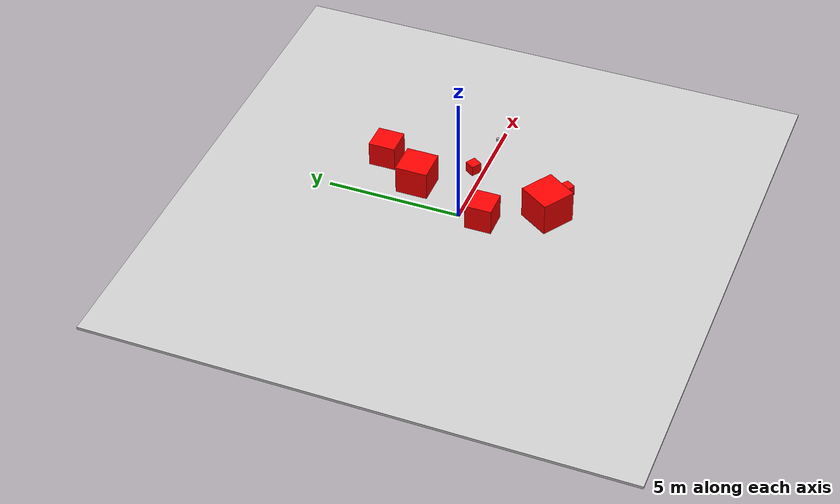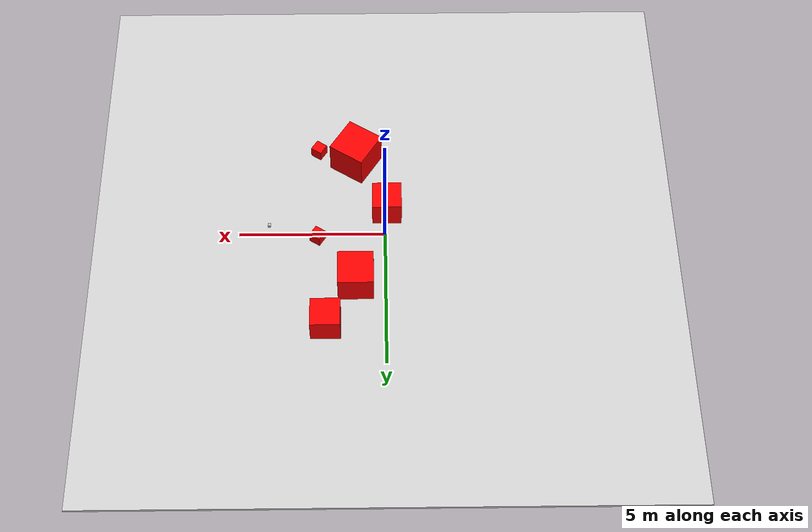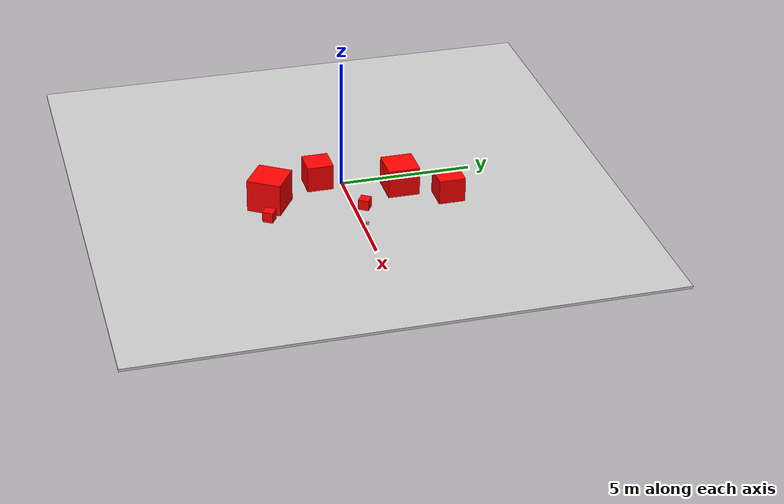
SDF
<sdf version='1.7'>
  <world name='visualize_lidar_world'>
    <physics name='1ms' type='ignored'>
      <max_step_size>0.001</max_step_size>
      <real_time_factor>1</real_time_factor>
      <real_time_update_rate>1000</real_time_update_rate>
    </physics>
    <plugin name='ignition::gazebo::systems::Physics' filename='libignition-gazebo-physics-system.so'/>
    <plugin name='ignition::gazebo::systems::Sensors' filename='libignition-gazebo-sensors-system.so'>
      <render_engine>ogre2</render_engine>
    </plugin>
    <plugin name='ignition::gazebo::systems::SceneBroadcaster' filename='libignition-gazebo-scene-broadcaster-system.so'/>
    <gui fullscreen='0'>
      <plugin name='3D View' filename='GzScene3D'>
        <ignition-gui>
          <title>3D View</title>
          <property type='bool' key='showTitleBar'>0</property>
          <property type='string' key='state'>docked</property>
        </ignition-gui>
        <engine>ogre2</engine>
        <scene>scene</scene>
        <ambient_light>0.4 0.4 0.4</ambient_light>
        <background_color>0.8 0.8 0.8</background_color>
        <camera_pose>-6 0 6 0 0.5 0</camera_pose>
      </plugin>
      <plugin name='World control' filename='WorldControl'>
        <ignition-gui>
          <title>World control</title>
          <property type='bool' key='showTitleBar'>0</property>
          <property type='bool' key='resizable'>0</property>
          <property type='double' key='height'>72</property>
          <property type='double' key='width'>121</property>
          <property type='double' key='z'>1</property>
          <property type='string' key='state'>floating</property>
          <anchors target='3D View'>
            <line own='left' target='left'/>
            <line own='bottom' target='bottom'/>
          </anchors>
        </ignition-gui>
        <play_pause>1</play_pause>
        <step>1</step>
        <start_paused>1</start_paused>
        <service>/world/visualize_lidar_world/control</service>
        <stats_topic>/world/visualize_lidar_world/stats</stats_topic>
      </plugin>
      <plugin name='World stats' filename='WorldStats'>
        <ignition-gui>
          <title>World stats</title>
          <property type='bool' key='showTitleBar'>0</property>
          <property type='bool' key='resizable'>0</property>
          <property type='double' key='height'>110</property>
          <property type='double' key='width'>290</property>
          <property type='double' key='z'>1</property>
          <property type='string' key='state'>floating</property>
          <anchors target='3D View'>
            <line own='right' target='right'/>
            <line own='bottom' target='bottom'/>
          </anchors>
        </ignition-gui>
        <sim_time>1</sim_time>
        <real_time>1</real_time>
        <real_time_factor>1</real_time_factor>
        <iterations>1</iterations>
        <topic>/world/visualize_lidar_world/stats</topic>
      </plugin>
      <plugin name='Visualize Lidar' filename='VisualizeLidar'>
        <ignition-gui>
          <property key='state' type='string'>docked</property>
        </ignition-gui>
      </plugin>
    </gui>
    <light name='sun' type='directional'>
      <cast_shadows>1</cast_shadows>
      <pose>0 0 10 0 -0 0</pose>
      <diffuse>0.8 0.8 0.8 1</diffuse>
      <specular>0.2 0.2 0.2 1</specular>
      <attenuation>
        <range>1000</range>
        <constant>0.9</constant>
        <linear>0.01</linear>
        <quadratic>0.001</quadratic>
      </attenuation>
      <direction>-0.5 0.1 -0.9</direction>
      <spot>
        <inner_angle>0</inner_angle>
        <outer_angle>0</outer_angle>
        <falloff>0</falloff>
      </spot>
    </light>
    <gravity>0 0 -9.8</gravity>
    <magnetic_field>6e-06 2.3e-05 -4.2e-05</magnetic_field>
    <atmosphere type='adiabatic'/>
    <scene>
      <ambient>0.4 0.4 0.4 1</ambient>
      <background>0.7 0.7 0.7 1</background>
      <shadows>1</shadows>
    </scene>
    <model name='ground_plane'>
      <static>1</static>
      <link name='link'>
        <collision name='collision'>
          <geometry>
            <box>
              <size>20 20 0.1</size>
            </box>
          </geometry>
          <surface>
            <friction>
              <ode/>
            </friction>
            <bounce/>
            <contact/>
          </surface>
        </collision>
        <visual name='visual'>
          <geometry>
            <box>
              <size>20 20 0.1</size>
            </box>
          </geometry>
          <material>
            <ambient>0.8 0.8 0.8 1</ambient>
            <diffuse>0.8 0.8 0.8 1</diffuse>
            <specular>0.8 0.8 0.8 1</specular>
          </material>
        </visual>
      </link>
      <pose>0 0 0 0 -0 0</pose>
    </model>
    <model name='box'>
      <pose>-0.067576 -0.928388 0.549999 1e-06 -0 0.00258</pose>
      <link name='box_link'>
        <inertial>
          <inertia>
            <ixx>1</ixx>
            <ixy>0</ixy>
            <ixz>0</ixz>
            <iyy>1</iyy>
            <iyz>0</iyz>
            <izz>1</izz>
          </inertia>
          <mass>1</mass>
        </inertial>
        <collision name='box_collision'>
          <geometry>
            <box>
              <size>1 1 1</size>
            </box>
          </geometry>
          <surface>
            <friction>
              <ode/>
            </friction>
            <bounce/>
            <contact/>
          </surface>
        </collision>
        <visual name='box_visual'>
          <geometry>
            <box>
              <size>1 1 1</size>
            </box>
          </geometry>
          <material>
            <ambient>1 0 0 1</ambient>
            <diffuse>1 0 0 1</diffuse>
            <specular>1 0 0 1</specular>
          </material>
        </visual>
      </link>
    </model>
    <model name='box_2'>
      <pose>1 -3 0.65 0 0 1</pose>
      <link name='box_link'>
        <inertial>
          <inertia>
            <ixx>1</ixx><ixy>0</ixy><ixz>0</ixz>
            <iyy>1</iyy><iyz>0</iyz><izz>1</izz>
          </inertia>
          <mass>1</mass>
        </inertial>
        <collision name='box_collision'>
          <geometry><box><size>1.3 1.3 1.3</size></box></geometry>
          <surface>
            <friction>
              <ode/>
            </friction>
            <bounce/>
            <contact/>
          </surface>
        </collision>
        <visual name='box_visual'>
          <geometry>
            <box>
              <size>1.3 1.3 1.3</size>
            </box>
          </geometry>
          <material>
            <ambient>1 0 0 1</ambient>
            <diffuse>1 0 0 1</diffuse>
            <specular>1 0 0 1</specular>
          </material>
        </visual>
      </link>
    </model>
    <model name='box_3'>
      <pose>2.3 0.3 0.4 0 0 1</pose>
      <link name='box_link'>
        <inertial>
          <inertia>
            <ixx>1</ixx><ixy>0</ixy><ixz>0</ixz>
            <iyy>1</iyy><iyz>0</iyz><izz>1</izz>
          </inertia>
          <mass>1</mass>
        </inertial>
        <collision name='box_collision'>
          <geometry><box><size>0.4 0.4 0.4</size></box></geometry>
          <surface>
            <friction>
              <ode/>
            </friction>
            <bounce/>
            <contact/>
          </surface>
        </collision>
        <visual name='box_visual'>
          <geometry>
            <box>
              <size>0.4 0.4 0.4</size>
            </box>
          </geometry>
          <material>
            <ambient>1 0 0 1</ambient>
            <diffuse>1 0 0 1</diffuse>
            <specular>1 0 0 1</specular>
          </material>
        </visual>
      </link>
    </model>
    <model name='box_6'>
      <pose>2.3 -3.3 0.4 0 0 1</pose>
      <link name='box_link'>
        <inertial>
          <inertia>
            <ixx>1</ixx><ixy>0</ixy><ixz>0</ixz>
            <iyy>1</iyy><iyz>0</iyz><izz>1</izz>
          </inertia>
          <mass>1</mass>
        </inertial>
        <collision name='box_collision'>
          <geometry><box><size>0.4 0.4 0.4</size></box></geometry>
          <surface>
            <friction>
              <ode/>
            </friction>
            <bounce/>
            <contact/>
          </surface>
        </collision>
        <visual name='box_visual'>
          <geometry>
            <box>
              <size>0.4 0.4 0.4</size>
            </box>
          </geometry>
          <material>
            <ambient>1 0 0 1</ambient>
            <diffuse>1 0 0 1</diffuse>
            <specular>1 0 0 1</specular>
          </material>
        </visual>
      </link>
    </model>
    <model name='box_4'>
      <pose>1 2 0.549999 1e-06 -0 0.00258</pose>
      <link name='box_link'>
        <inertial>
          <inertia>
            <ixx>1</ixx>
            <ixy>0</ixy>
            <ixz>0</ixz>
            <iyy>1</iyy>
            <iyz>0</iyz>
            <izz>1</izz>
          </inertia>
          <mass>1</mass>
        </inertial>
        <collision name='box_collision'>
          <geometry><box><size>1.2 1.2 1.2</size></box></geometry>
          <surface>
            <friction><ode/></friction>
            <bounce/>
            <contact/>
          </surface>
        </collision>
        <visual name='box_visual'>
          <geometry><box><size>1.2 1.2 1.2</size></box></geometry>
          <material>
            <ambient>1 0 0 1</ambient>
            <diffuse>1 0 0 1</diffuse>
            <specular>1 0 0 1</specular>
          </material>
        </visual>
      </link>
    </model>
    <model name='box_5'>
      <pose>2 3.6 0.5 0 0 0</pose>
      <link name='box_link'>
        <inertial>
          <inertia>
            <ixx>1</ixx>
            <ixy>0</ixy>
            <ixz>0</ixz>
            <iyy>1</iyy>
            <iyz>0</iyz>
            <izz>1</izz>
          </inertia>
          <mass>1</mass>
        </inertial>
        <collision name='box_collision'>
          <geometry><box><size>1 1 1</size></box></geometry>
          <surface>
            <friction><ode/></friction>
            <bounce/>
            <contact/>
          </surface>
        </collision>
        <visual name='box_visual'>
          <geometry><box><size>1 1 1</size></box></geometry>
          <material>
            <ambient>1 0 0 1</ambient>
            <diffuse>1 0 0 1</diffuse>
            <specular>1 0 0 1</specular>
          </material>
        </visual>
      </link>
    </model>
    <model name='model_with_lidar'>
      <pose>4 0 0.5 0 -0 3.14</pose>
      <link name='link'>
        <pose>0.05 0.05 0.05 0 -0 0</pose>
        <inertial>
          <mass>0.1</mass>
          <inertia>
            <ixx>0.000166667</ixx>
            <iyy>0.000166667</iyy>
            <izz>0.000166667</izz>
            <ixy>0</ixy>
            <ixz>0</ixz>
            <iyz>0</iyz>
          </inertia>
        </inertial>
        <collision name='collision'>
          <geometry>
            <box>
              <size>0.1 0.1 0.1</size>
            </box>
          </geometry>
          <surface>
            <friction>
              <ode/>
            </friction>
            <bounce/>
            <contact/>
          </surface>
        </collision>
        <visual name='visual'>
          <geometry>
            <box>
              <size>0.1 0.1 0.1</size>
            </box>
          </geometry>
        </visual>
        <sensor name='gpu_lidar' type='gpu_lidar'>
          <topic>lidar</topic>
          <update_rate>10</update_rate>
          <lidar>
            <scan>
              <horizontal>
                <samples>640</samples>
                <resolution>1</resolution>
                <min_angle>-1.39626</min_angle>
                <max_angle>1.39626</max_angle>
              </horizontal>
              <vertical>
                <samples>16</samples>
                <resolution>1</resolution>
                <min_angle>-0.261799</min_angle>
                <max_angle>0.261799</max_angle>
              </vertical>
            </scan>
            <range>
              <min>0.08</min>
              <max>10</max>
              <resolution>0.01</resolution>
            </range>
          </lidar>
          <visualize>1</visualize>
          <alwaysOn>1</alwaysOn>
        </sensor>
      </link>
      <static>1</static>
    </model>
  </world>
</sdf>
